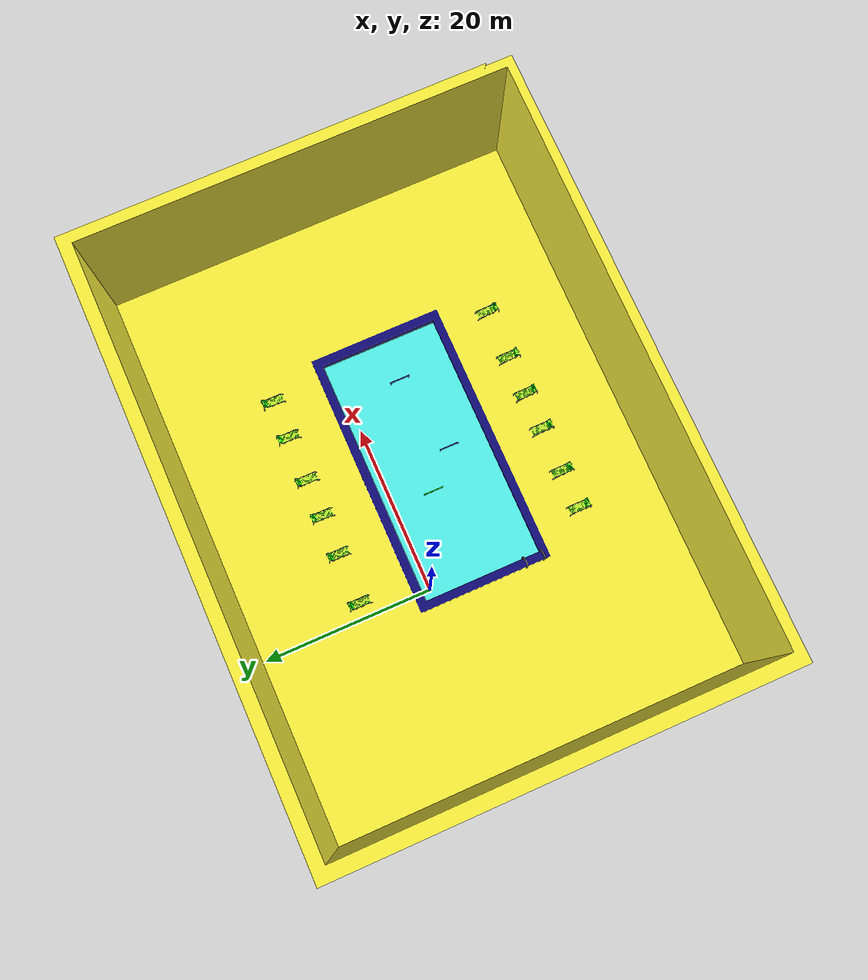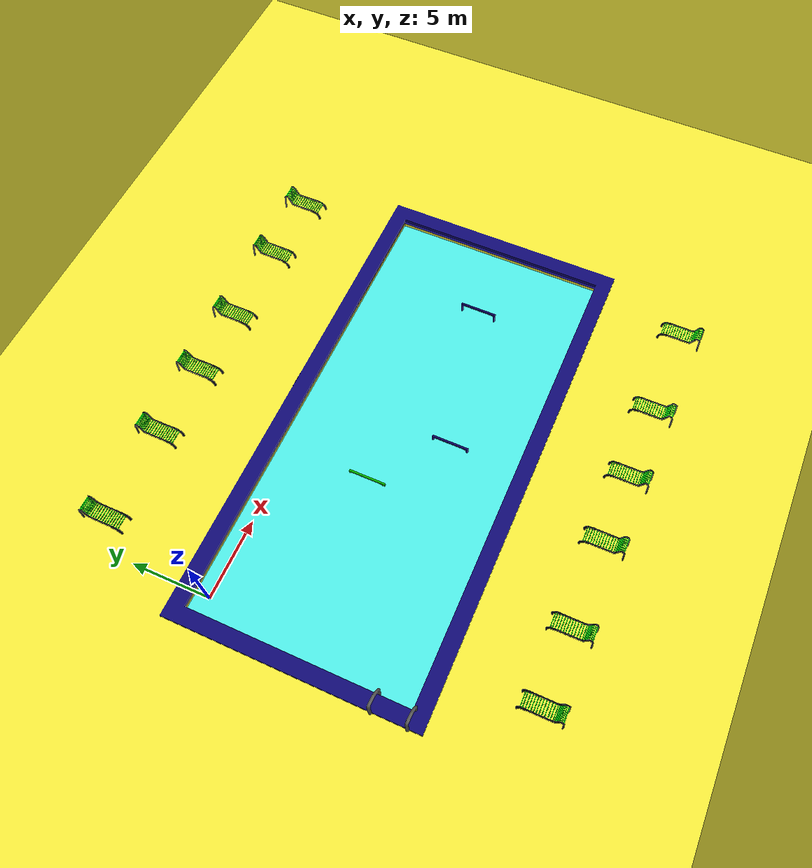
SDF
<sdf version="1.6">
 <world name="buoyant_tethys">
  <scene><ambient>0.7 0.7 0.7</ambient><background>0.7 0.7 0.7</background></scene>
  <physics name="1ms" type="ode">
   <max_step_size>0.001</max_step_size>
   <real_time_factor>1.0</real_time_factor>
  </physics>
  <plugin filename="ignition-gazebo-physics-system" name="ignition::gazebo::systems::Physics"/>
  <plugin filename="ignition-gazebo-user-commands-system" name="ignition::gazebo::systems::UserCommands"/>
  <plugin filename="ignition-gazebo-scene-broadcaster-system" name="ignition::gazebo::systems::SceneBroadcaster"/>
  <plugin filename="ignition-gazebo-contact-system" name="ignition::gazebo::systems::Contact"/>
  <plugin filename="ignition-gazebo-buoyancy-system" name="ignition::gazebo::systems::Buoyancy">
   <graded_buoyancy>
    <default_density>1000</default_density>
    <density_change><above_depth>0</above_depth><density>1</density></density_change>
   </graded_buoyancy>
   <enable>Orca</enable>
  </plugin>
  <light type="directional" name="sun">
   <pose>0 0 10 0 0 0</pose>
   <diffuse>1 1 1 1</diffuse>
   <specular>0.5 0.5 0.5 1</specular>
   <attenuation>
    <range>1000</range>
    <constant>0.9</constant>
    <linear>0.01</linear>
    <quadratic>0.001</quadratic>
   </attenuation>
   <direction>-0.5 0.1 -0.9</direction>
  </light>
  <model name="Env">
   <static>true</static>
   <link name="pool">
    <collision name="collision">
     <geometry><mesh><uri>pool.dae</uri><scale>1 1 1</scale></mesh></geometry>
    </collision>
    <visual name="visual"><geometry><mesh><uri>pool2.dae</uri><scale>1 1 1</scale></mesh></geometry></visual>
   </link>
   <link name="water">
    <pose>0 0 -.1 0 0 0</pose>
    <visual name="visual"><geometry><mesh><uri>water.dae</uri><scale>1 1 1</scale></mesh></geometry></visual>
   </link>
   <link name="challenge1">
    <collision name="collision">
     <geometry><mesh><uri>challange1.dae</uri><scale>1 1 1</scale></mesh></geometry>
    </collision>
    <visual name="visual"><geometry><mesh><uri>challange1.dae</uri><scale>1 1 1</scale></mesh></geometry></visual>
   </link>
   <link name="challenge2">
    <collision name="collision">
     <geometry><mesh><uri>challange2.dae</uri><scale>1 1 1</scale></mesh></geometry>
    </collision>
    <visual name="visual"><geometry><mesh><uri>challange2.dae</uri><scale>1 1 1</scale></mesh></geometry></visual>
   </link>
   <link name="challenge3">
    <collision name="collision">
     <geometry><mesh><uri>challange3.dae</uri><scale>1 1 1</scale></mesh></geometry>
    </collision>
    <visual name="visual"><geometry><mesh><uri>challange3.dae</uri><scale>1 1 1</scale></mesh></geometry></visual>
   </link>
   <link name="challenge4">
    <collision name="collision">
     <geometry><mesh><uri>challange1.dae</uri><scale>1 1 1</scale></mesh></geometry>
    </collision>
    <visual name="visual"><geometry><mesh><uri>challange4.dae</uri><scale>1 1 1</scale></mesh></geometry></visual>
   </link>
   <link name="challenge5">
    <collision name="collision">
     <geometry><mesh><uri>challange5.dae</uri><scale>1 1 1</scale></mesh></geometry>
    </collision>
    <visual name="visual"><geometry><mesh><uri>challange5.dae</uri><scale>1 1 1</scale></mesh></geometry></visual>
   </link>
  </model>
 </world>
</sdf>
